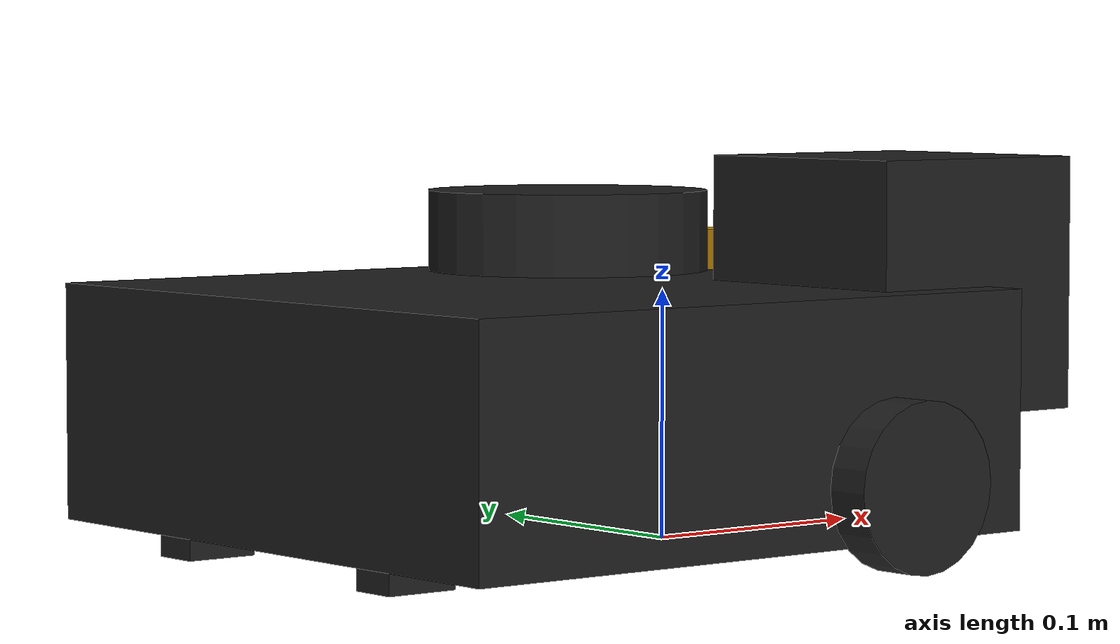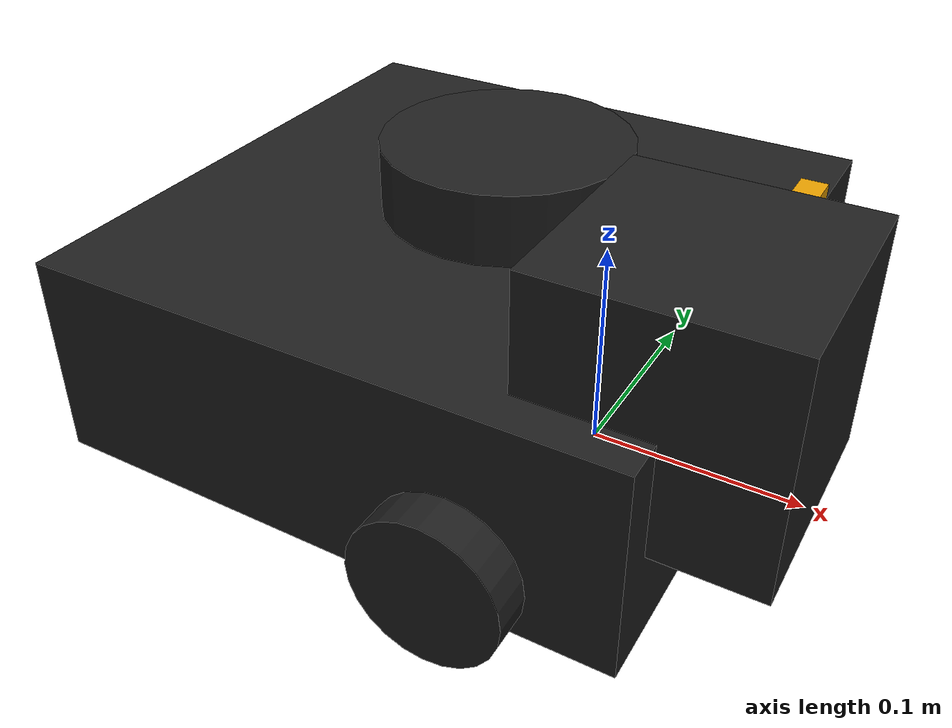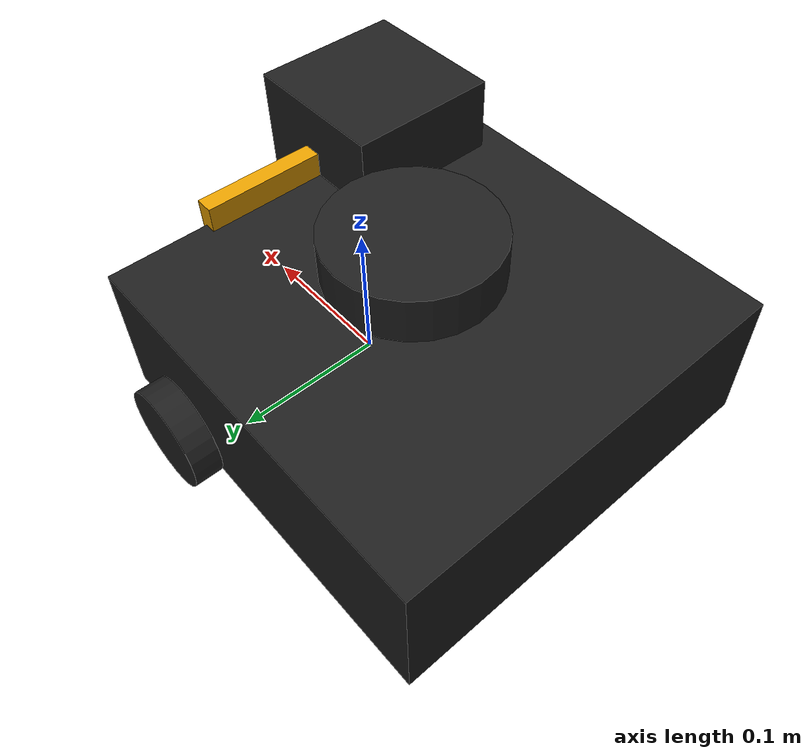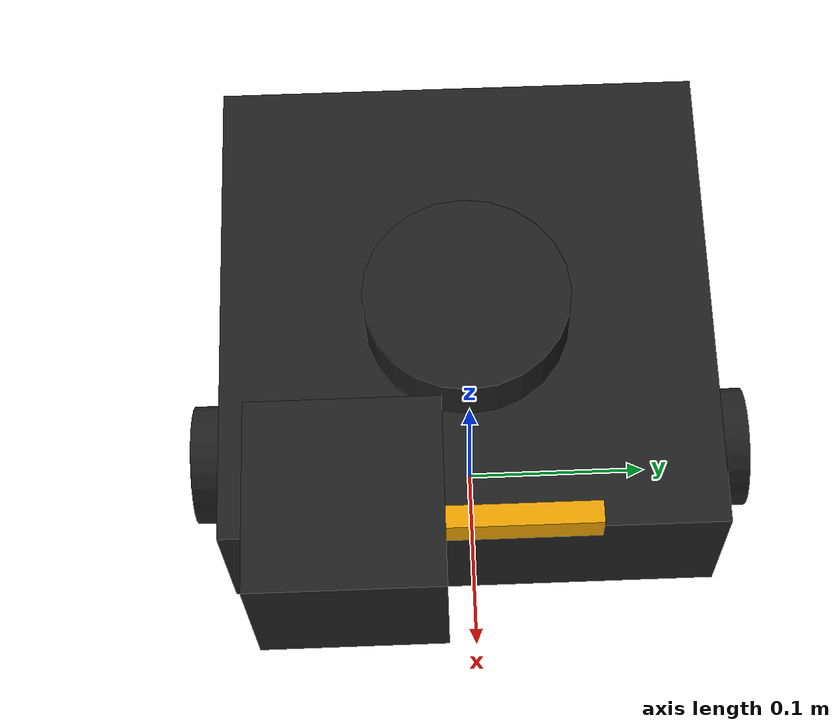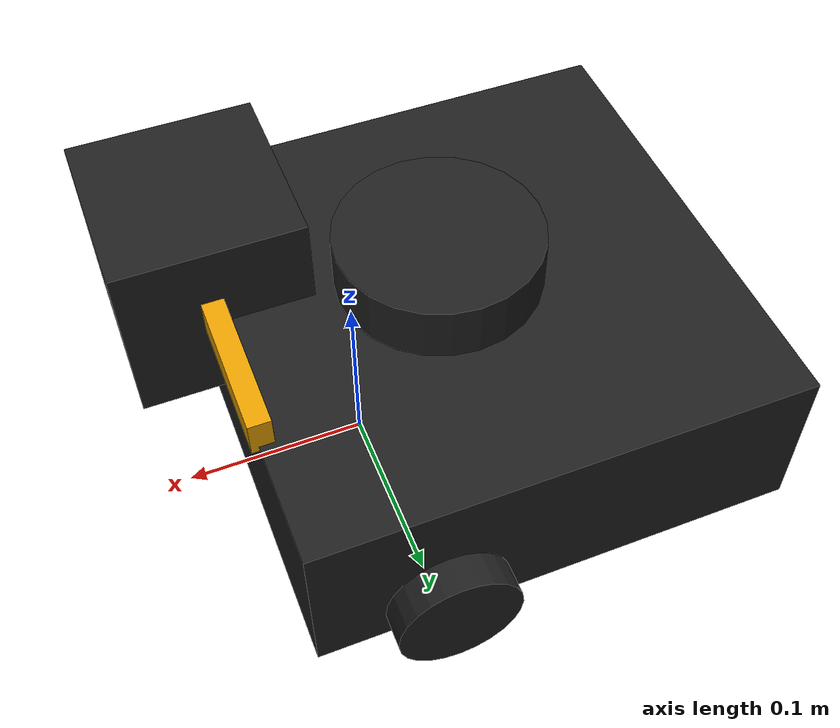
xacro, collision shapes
<?xml version="1.0" ?>
<robot name="turtlebot3_waffle" xmlns:xacro="http://ros.org/wiki/xacro">
  <xacro:include filename="$(find turtlebot3_description)/urdf/common_properties.xacro"/>
  <xacro:include filename="$(find turtlebot3_description)/urdf/turtlebot3_waffle.gazebo.xacro"/>

  <xacro:property name="r200_cam_rgb_px" value="0.005"/>
  <xacro:property name="r200_cam_rgb_py" value="0.018"/>
  <xacro:property name="r200_cam_rgb_pz" value="0.013"/>
  <xacro:property name="r200_cam_depth_offset" value="0.01"/>

  <link name="base_footprint"/>

  <joint name="base_joint" type="fixed">
    <parent link="base_footprint"/>
    <child link="base_link" />
    <origin xyz="0 0 0.010" rpy="0 0 0"/>
  </joint>

  <link name="base_link">
    <visual>
      <origin xyz="-0.064 0 0.0" rpy="0 0 0"/>
      <geometry>
        <mesh filename="package://turtlebot3_description/meshes/bases/waffle_base.stl" scale="0.001 0.001 0.001"/>
      </geometry>
      <material name="light_black"/>
    </visual>

    <collision>
      <origin xyz="-0.064 0 0.047" rpy="0 0 0"/>
      <geometry>
        <box size="0.266 0.266 0.094"/>
      </geometry>
    </collision>

    <inertial>
      <origin xyz="0 0 0" rpy="0 0 0"/>
      <mass value="1.3729096e+00"/>
      <inertia ixx="8.7002718e-03" ixy="-4.7576583e-05" ixz="1.1160499e-04"
               iyy="8.6195418e-03" iyz="-3.5422299e-06"
               izz="1.4612727e-02" />
    </inertial>
  </link>

  <joint name="wheel_left_joint" type="continuous">
    <parent link="base_link"/>
    <child link="wheel_left_link"/>
    <origin xyz="0.0 0.144 0.023" rpy="-1.57 0 0"/>
    <axis xyz="0 0 1"/>
  </joint>

  <link name="wheel_left_link">
    <visual>
      <origin xyz="0 0 0" rpy="1.57 0 0"/>
      <geometry>
        <mesh filename="package://turtlebot3_description/meshes/wheels/left_tire.stl" scale="0.001 0.001 0.001"/>
      </geometry>
      <material name="dark"/>
    </visual>

    <collision>
      <origin xyz="0 0 0" rpy="0 0 0"/>
      <geometry>
        <cylinder length="0.018" radius="0.033"/>
      </geometry>
    </collision>

    <inertial>
      <origin xyz="0 0 0" />
      <mass value="2.8498940e-02" />
      <inertia ixx="1.1175580e-05" ixy="-4.2369783e-11" ixz="-5.9381719e-09"
               iyy="1.1192413e-05" iyz="-1.4400107e-11"
               izz="2.0712558e-05" />
      </inertial>
  </link>

  <joint name="wheel_right_joint" type="continuous">
    <parent link="base_link"/>
    <child link="wheel_right_link"/>
    <origin xyz="0.0 -0.144 0.023" rpy="-1.57 0 0"/>
    <axis xyz="0 0 1"/>
  </joint>

  <link name="wheel_right_link">
    <visual>
      <origin xyz="0 0 0" rpy="1.57 0 0"/>
      <geometry>
        <mesh filename="package://turtlebot3_description/meshes/wheels/right_tire.stl" scale="0.001 0.001 0.001"/>
      </geometry>
      <material name="dark"/>
    </visual>

    <collision>
      <origin xyz="0 0 0" rpy="0 0 0"/>
      <geometry>
        <cylinder length="0.018" radius="0.033"/>
      </geometry>
    </collision>

    <inertial>
      <origin xyz="0 0 0" />
      <mass value="2.8498940e-02" />
      <inertia ixx="1.1175580e-05" ixy="-4.2369783e-11" ixz="-5.9381719e-09"
               iyy="1.1192413e-05" iyz="-1.4400107e-11"
               izz="2.0712558e-05" />
      </inertial>
  </link>

  <joint name="caster_back_right_joint" type="fixed">
    <parent link="base_link"/>
    <child link="caster_back_right_link"/>
    <origin xyz="-0.177 -0.064 -0.004" rpy="-1.57 0 0"/>
  </joint>

  <link name="caster_back_right_link">
    <collision>
      <origin xyz="0 0.001 0" rpy="0 0 0"/>
      <geometry>
        <box size="0.030 0.009 0.020"/>
      </geometry>
    </collision>

    <inertial>
      <origin xyz="0 0 0" />
      <mass value="0.005" />
      <inertia ixx="0.001" ixy="0.0" ixz="0.0"
               iyy="0.001" iyz="0.0"
               izz="0.001" />
    </inertial>
  </link>

  <joint name="caster_back_left_joint" type="fixed">
    <parent link="base_link"/>
    <child link="caster_back_left_link"/>
    <origin xyz="-0.177 0.064 -0.004" rpy="-1.57 0 0"/>
  </joint>

  <link name="caster_back_left_link">
    <collision>
      <origin xyz="0 0.001 0" rpy="0 0 0"/>
      <geometry>
        <box size="0.030 0.009 0.020"/>
      </geometry>
    </collision>

    <inertial>
      <origin xyz="0 0 0" />
      <mass value="0.005" />
      <inertia ixx="0.001" ixy="0.0" ixz="0.0"
               iyy="0.001" iyz="0.0"
               izz="0.001" />
    </inertial>
  </link>

  <joint name="imu_joint" type="fixed">
    <parent link="base_link"/>
    <child link="imu_link"/>
    <origin xyz="0.0 0 0.068" rpy="0 0 0"/>
  </joint>

  <link name="imu_link"/>

  <joint name="scan_joint" type="fixed">
    <parent link="base_link"/>
    <child link="base_scan"/>
    <origin xyz="-0.064 0 0.122" rpy="0 0 0"/>
  </joint>

  <link name="base_scan">
    <visual>
      <origin xyz="0 0 0" rpy="0 0 0"/>
      <geometry>
        <mesh filename="package://turtlebot3_description/meshes/sensors/lds.stl" scale="0.001 0.001 0.001"/>
      </geometry>
      <material name="dark"/>
    </visual>

    <collision>
      <origin xyz="0.015 0 -0.0065" rpy="0 0 0"/>
      <geometry>
        <cylinder length="0.0315" radius="0.055"/>
      </geometry>
    </collision>

    <inertial>
      <mass value="0.114" />
      <origin xyz="0 0 0" />
      <inertia ixx="0.001" ixy="0.0" ixz="0.0"
               iyy="0.001" iyz="0.0"
               izz="0.001" />
    </inertial>
  </link>

  <joint name="camera_joint" type="fixed">
    <origin xyz="0.064 -0.065 0.094" rpy="0 0 0"/>
    <parent link="base_link"/>
    <child link="camera_link"/>
  </joint>

  <link name="camera_link">
    <visual>
     <origin xyz="0 0 0" rpy="1.57 0 1.57"/>
      <geometry>
       <mesh filename="package://turtlebot3_description/meshes/sensors/r200.dae" />
      </geometry>
    </visual>
    <collision>
      <origin xyz="0.003 0.065 0.007" rpy="0 0 0"/>
      <geometry>
        <box size="0.012 0.132 0.020"/>
      </geometry>
    </collision>

    <!-- This inertial field needs doesn't contain reliable data!! -->
  </link>

  <joint name="camera_rgb_joint" type="fixed">
    <origin xyz="${r200_cam_rgb_px} ${r200_cam_rgb_py} ${r200_cam_rgb_pz}" rpy="0 0 0"/>
    <parent link="camera_link"/>
    <child link="camera_rgb_frame"/>
  </joint>
  <link name="camera_rgb_frame"/>

  <joint name="camera_rgb_optical_joint" type="fixed">
    <origin xyz="0 0 0" rpy="-1.57 0 -1.57"/>
    <parent link="camera_rgb_frame"/>
    <child link="camera_rgb_optical_frame"/>
  </joint>
  <link name="camera_rgb_optical_frame"/>

  <joint name="camera_depth_joint" type="fixed">
    <origin xyz="${r200_cam_rgb_px} ${r200_cam_rgb_py + r200_cam_depth_offset} ${r200_cam_rgb_pz}" rpy="0 0 0"/>
    <parent link="camera_link"/>
    <child link="camera_depth_frame"/>
  </joint>
  <link name="camera_depth_frame"/>

  <joint name="camera_depth_optical_joint" type="fixed">
    <origin xyz="0 0 0" rpy="-1.57 0 -1.57"/>
    <parent link="camera_depth_frame"/>
    <child link="camera_depth_optical_frame"/>
  </joint>
  <link name="camera_depth_optical_frame"/>

<!-- Hokuyo Laser -->
  <joint name="hokuyo_joint" type="fixed">
    <origin xyz="0.064 -0.065 0.094" rpy="0 0 0"/>
    <parent link="base_link"/>
    <child link="hokuyo_link"/>
  </joint>
       <link name="hokuyo_link">
         <collision>
           <origin xyz="0 0 0" rpy="0 0 0"/>
           <geometry>
         <box size="0.1 0.1 0.1"/>
           </geometry>
         </collision>

       <visual>
           <origin xyz="0 0 0" rpy="0 0 0"/>
         <geometry>
        <mesh filename="package://multi_robot_scenario/launch/includes/meshes/hokuyo.dae"/>
         </geometry>
       </visual>

       <inertial>
           <mass value="1e-5" />
         <origin xyz="0 0 0" rpy="0 0 0"/>
        <inertia ixx="1e-6" ixy="0" ixz="0" iyy="1e-6" iyz="0" izz="1e-6" />
        </inertial>
       </link>

<!-- camera -->
  <gazebo reference="camera_link">
    <sensor type="camera" name="rgbcamera">
      <update_rate>30.0</update_rate>
      <camera name="head">
        <horizontal_fov>1.4</horizontal_fov>
        <image>
          <width>642</width>
          <height>362</height>
          <format>R8G8B8</format>
        </image>
        <clip>
          <near>0.02</near>
          <far>300</far>
        </clip>
        <noise>
          <type>gaussian</type>
          <!-- Noise is sampled independently per pixel on each frame.
               That pixel's noise value is added to each of its color
               channels, which at that point lie in the range [0,1]. -->
          <mean>0.0</mean>
          <stddev>0.007</stddev>
        </noise>
      </camera>
      <plugin name="camera_controller" filename="libgazebo_ros_camera.so">
        <alwaysOn>true</alwaysOn>
        <updateRate>0.0</updateRate>
        <cameraName>rgbcamera</cameraName>
        <imageTopicName>image_raw</imageTopicName>
        <cameraInfoTopicName>camera_info</cameraInfoTopicName>
        <frameName>camera_link</frameName>
        <hackBaseline>0.07</hackBaseline>
        <distortionK1>0.0</distortionK1>
        <distortionK2>0.0</distortionK2>
        <distortionK3>0.0</distortionK3>
        <distortionT1>0.0</distortionT1>
        <distortionT2>0.0</distortionT2>
      </plugin>
    </sensor>
  </gazebo>

<!--kinect-->
    <gazebo reference="camera_link">
            <sensor type="depth" name="kinectcamera">
            <update_rate>30.0</update_rate>
            <camera name="head">
                <horizontal_fov>0.6</horizontal_fov>
                <image>
                    <width>352</width>
                    <height>352</height>
                    <format>R8G8B8</format>
                </image>
                <clip>
                    <near>0.02</near>
                    <far>300</far>
                </clip>
            </camera>

            <plugin name="kinect_camera_controller" filename="libgazebo_ros_openni_kinect.so">
                <alwaysOn>true</alwaysOn>
                <updateRate>10</updateRate>
                <cameraName>kinectcamera</cameraName>
                <imageTopicName>rgb/image_raw</imageTopicName>

                <depthImageTopicName>depth/image_raw</depthImageTopicName>
		<pointCloudTopicName>depth/points</pointCloudTopicName>
                <cameraInfoTopicName>rgb/camera_info</cameraInfoTopicName>
		<depthImageCameraInfoTopicName>depth/camera_info</depthImageCameraInfoTopicName>
                <frameName>camera_depth_optical_frame</frameName>
                <baseline>0.1</baseline>
		<distortion_k1>0.0</distortion_k1>
		<distortion_k2>0.0</distortion_k2>
		<distortion_k3>0.0</distortion_k3>
		<distortion_t1>0.0</distortion_t1>
		<distortion_t2>0.0</distortion_t2>
                <pointCloudCutoff>0.4</pointCloudCutoff>
            </plugin>
        </sensor>
    </gazebo>

<!-- Hokuyo Laser -->

<gazebo reference="hokuyo_link">
    <material>Gazebo/FlatBlack</material>
    <sensor type="ray" name="lds_lfcd_sensor">
      <pose>0 0 0 0 0 0</pose>
      <visualize>true</visualize>
      <update_rate>5</update_rate>
      <ray>
        <scan>
          <horizontal>
            <samples>360</samples>
            <resolution>1</resolution>
            <min_angle>0.0</min_angle>
            <max_angle>6.28319</max_angle>
          </horizontal>
        </scan>
        <range>
          <min>0.120</min>
          <max>3.5</max>
          <resolution>0.015</resolution>
        </range>
        <noise>
          <type>gaussian</type>
          <mean>0.0</mean>
          <stddev>0.01</stddev>
        </noise>
      </ray>
      <plugin name="gazebo_ros_lds_lfcd_controller" filename="libgazebo_ros_laser.so">
        <topicName>base_scan</topicName>
        <frameName>base_footprint</frameName>
      </plugin>
    </sensor>
  </gazebo>

</robot>
